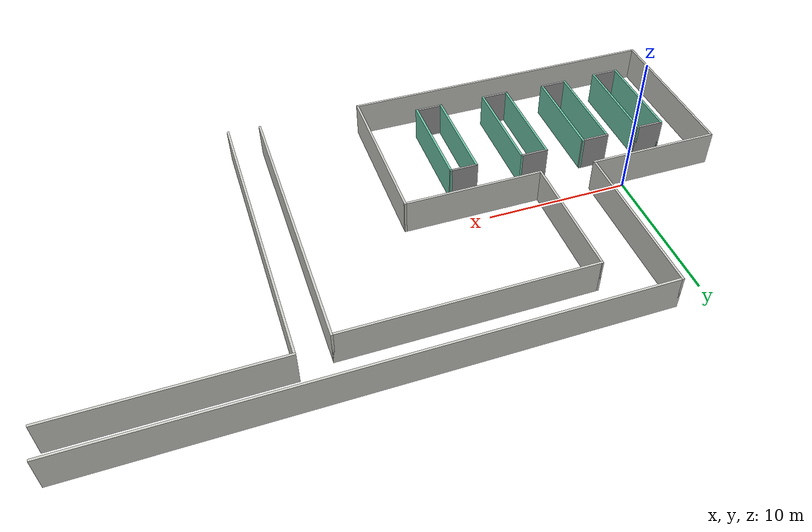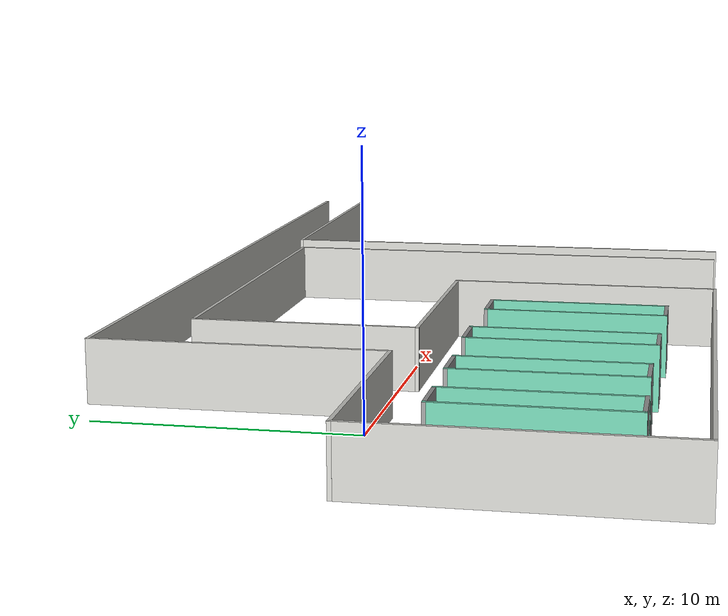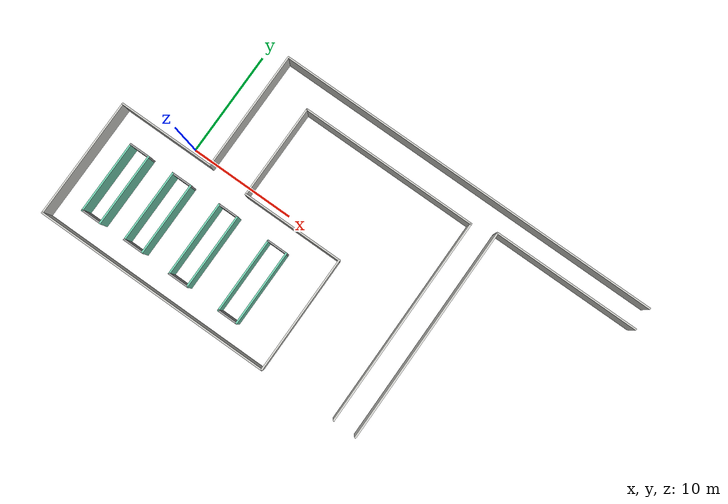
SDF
<?xml version='1.0'?>
<sdf version='1.7'>
  <model name='mybuilding'>
    <pose>16.1608 -0.446538 0 0 -0 0</pose>
    <link name='Wall_0'>
      <collision name='Wall_0_Collision'>
        <geometry>
          <box>
            <size>7 0.15 2.5</size>
          </box>
        </geometry>
        <pose>0 0 1.25 0 -0 0</pose>
      </collision>
      <visual name='Wall_0_Visual'>
        <pose>0 0 1.25 0 -0 0</pose>
        <geometry>
          <box>
            <size>7 0.15 2.5</size>
          </box>
        </geometry>
        <material>
          <script>
            <uri>file://media/materials/scripts/gazebo.material</uri>
            <name>Gazebo/Grey</name>
          </script>
          <ambient>0.435294 0.796078 0.67451 1</ambient>
        </material>
        <meta>
          <layer>0</layer>
        </meta>
      </visual>
      <pose>-20.3708 -5.82846 0 0 -0 -1.5708</pose>
    </link>
    <link name='Wall_1'>
      <collision name='Wall_1_Collision'>
        <geometry>
          <box>
            <size>2 0.15 2.5</size>
          </box>
        </geometry>
        <pose>0 0 1.25 0 -0 0</pose>
      </collision>
      <visual name='Wall_1_Visual'>
        <pose>0 0 1.25 0 -0 0</pose>
        <geometry>
          <box>
            <size>2 0.15 2.5</size>
          </box>
        </geometry>
        <material>
          <script>
            <uri>file://media/materials/scripts/gazebo.material</uri>
            <name>Gazebo/Grey</name>
          </script>
          <ambient>1 1 1 1</ambient>
        </material>
        <meta>
          <layer>0</layer>
        </meta>
      </visual>
      <pose>-19.4458 -9.25346 0 0 -0 0</pose>
    </link>
    <link name='Wall_10'>
      <collision name='Wall_10_Collision'>
        <geometry>
          <box>
            <size>7.25 0.15 2.5</size>
          </box>
        </geometry>
        <pose>0 0 1.25 0 -0 0</pose>
      </collision>
      <visual name='Wall_10_Visual'>
        <pose>0 0 1.25 0 -0 0</pose>
        <geometry>
          <box>
            <size>7.25 0.15 2.5</size>
          </box>
        </geometry>
        <material>
          <script>
            <uri>file://media/materials/scripts/gazebo.material</uri>
            <name>Gazebo/Grey</name>
          </script>
          <ambient>0.435294 0.796078 0.67451 1</ambient>
        </material>
        <meta>
          <layer>0</layer>
        </meta>
      </visual>
      <pose>-11.3008 -5.78346 0 0 -0 -1.5708</pose>
    </link>
    <link name='Wall_11'>
      <collision name='Wall_11_Collision'>
        <geometry>
          <box>
            <size>2 0.15 2.5</size>
          </box>
        </geometry>
        <pose>0 0 1.25 0 -0 0</pose>
      </collision>
      <visual name='Wall_11_Visual'>
        <pose>0 0 1.25 0 -0 0</pose>
        <geometry>
          <box>
            <size>2 0.15 2.5</size>
          </box>
        </geometry>
        <material>
          <script>
            <uri>file://media/materials/scripts/gazebo.material</uri>
            <name>Gazebo/Grey</name>
          </script>
          <ambient>1 1 1 1</ambient>
        </material>
        <meta>
          <layer>0</layer>
        </meta>
      </visual>
      <pose>-10.3758 -9.33346 0 0 -0 0</pose>
    </link>
    <link name='Wall_12'>
      <collision name='Wall_12_Collision'>
        <geometry>
          <box>
            <size>7.25 0.15 2.5</size>
          </box>
        </geometry>
        <pose>0 0 1.25 0 -0 0</pose>
      </collision>
      <visual name='Wall_12_Visual'>
        <pose>0 0 1.25 0 -0 0</pose>
        <geometry>
          <box>
            <size>7.25 0.15 2.5</size>
          </box>
        </geometry>
        <material>
          <script>
            <uri>file://media/materials/scripts/gazebo.material</uri>
            <name>Gazebo/Grey</name>
          </script>
          <ambient>0.435294 0.796078 0.67451 1</ambient>
        </material>
        <meta>
          <layer>0</layer>
        </meta>
      </visual>
      <pose>-9.45077 -5.78346 0 0 -0 1.5708</pose>
    </link>
    <link name='Wall_13'>
      <collision name='Wall_13_Collision'>
        <geometry>
          <box>
            <size>2 0.15 2.5</size>
          </box>
        </geometry>
        <pose>0 0 1.25 0 -0 0</pose>
      </collision>
      <visual name='Wall_13_Visual'>
        <pose>0 0 1.25 0 -0 0</pose>
        <geometry>
          <box>
            <size>2 0.15 2.5</size>
          </box>
        </geometry>
        <material>
          <script>
            <uri>file://media/materials/scripts/gazebo.material</uri>
            <name>Gazebo/Grey</name>
          </script>
          <ambient>1 1 1 1</ambient>
        </material>
        <meta>
          <layer>0</layer>
        </meta>
      </visual>
      <pose>-10.3758 -2.23346 0 0 -0 3.14159</pose>
    </link>
    <link name='Wall_15'>
      <collision name='Wall_15_Collision'>
        <geometry>
          <box>
            <size>7.25 0.15 2.5</size>
          </box>
        </geometry>
        <pose>0 0 1.25 0 -0 0</pose>
      </collision>
      <visual name='Wall_15_Visual'>
        <pose>0 0 1.25 0 -0 0</pose>
        <geometry>
          <box>
            <size>7.25 0.15 2.5</size>
          </box>
        </geometry>
        <material>
          <script>
            <uri>file://media/materials/scripts/gazebo.material</uri>
            <name>Gazebo/Grey</name>
          </script>
          <ambient>0.435294 0.796078 0.67451 1</ambient>
        </material>
        <meta>
          <layer>0</layer>
        </meta>
      </visual>
      <pose>-6.16902 -5.89376 0 0 -0 -1.5708</pose>
    </link>
    <link name='Wall_16'>
      <collision name='Wall_16_Collision'>
        <geometry>
          <box>
            <size>2 0.15 2.5</size>
          </box>
        </geometry>
        <pose>0 0 1.25 0 -0 0</pose>
      </collision>
      <visual name='Wall_16_Visual'>
        <pose>0 0 1.25 0 -0 0</pose>
        <geometry>
          <box>
            <size>2 0.15 2.5</size>
          </box>
        </geometry>
        <material>
          <script>
            <uri>file://media/materials/scripts/gazebo.material</uri>
            <name>Gazebo/Grey</name>
          </script>
          <ambient>1 1 1 1</ambient>
        </material>
        <meta>
          <layer>0</layer>
        </meta>
      </visual>
      <pose>-5.24402 -9.44376 0 0 -0 0</pose>
    </link>
    <link name='Wall_17'>
      <collision name='Wall_17_Collision'>
        <geometry>
          <box>
            <size>7.25 0.15 2.5</size>
          </box>
        </geometry>
        <pose>0 0 1.25 0 -0 0</pose>
      </collision>
      <visual name='Wall_17_Visual'>
        <pose>0 0 1.25 0 -0 0</pose>
        <geometry>
          <box>
            <size>7.25 0.15 2.5</size>
          </box>
        </geometry>
        <material>
          <script>
            <uri>file://media/materials/scripts/gazebo.material</uri>
            <name>Gazebo/Grey</name>
          </script>
          <ambient>0.435294 0.796078 0.67451 1</ambient>
        </material>
        <meta>
          <layer>0</layer>
        </meta>
      </visual>
      <pose>-4.31902 -5.89376 0 0 -0 1.5708</pose>
    </link>
    <link name='Wall_18'>
      <collision name='Wall_18_Collision'>
        <geometry>
          <box>
            <size>2 0.15 2.5</size>
          </box>
        </geometry>
        <pose>0 0 1.25 0 -0 0</pose>
      </collision>
      <visual name='Wall_18_Visual'>
        <pose>0 0 1.25 0 -0 0</pose>
        <geometry>
          <box>
            <size>2 0.15 2.5</size>
          </box>
        </geometry>
        <material>
          <script>
            <uri>file://media/materials/scripts/gazebo.material</uri>
            <name>Gazebo/Grey</name>
          </script>
          <ambient>1 1 1 1</ambient>
        </material>
        <meta>
          <layer>0</layer>
        </meta>
      </visual>
      <pose>-5.24402 -2.34376 0 0 -0 3.14159</pose>
    </link>
    <link name='Wall_2'>
      <collision name='Wall_2_Collision'>
        <geometry>
          <box>
            <size>7 0.15 2.5</size>
          </box>
        </geometry>
        <pose>0 0 1.25 0 -0 0</pose>
      </collision>
      <visual name='Wall_2_Visual'>
        <pose>0 0 1.25 0 -0 0</pose>
        <geometry>
          <box>
            <size>7 0.15 2.5</size>
          </box>
        </geometry>
        <material>
          <script>
            <uri>file://media/materials/scripts/gazebo.material</uri>
            <name>Gazebo/Grey</name>
          </script>
          <ambient>0.435294 0.796078 0.67451 1</ambient>
        </material>
        <meta>
          <layer>0</layer>
        </meta>
      </visual>
      <pose>-18.5208 -5.82846 0 0 -0 1.5708</pose>
    </link>
    <link name='Wall_21'>
      <collision name='Wall_21_Collision'>
        <geometry>
          <box>
            <size>9.25 0.15 2.5</size>
          </box>
        </geometry>
        <pose>0 0 1.25 0 -0 0</pose>
      </collision>
      <visual name='Wall_21_Visual'>
        <pose>0 0 1.25 0 -0 0</pose>
        <geometry>
          <box>
            <size>9.25 0.15 2.5</size>
          </box>
        </geometry>
        <material>
          <script>
            <uri>file://media/materials/scripts/gazebo.material</uri>
            <name>Gazebo/CeilingTiled</name>
          </script>
          <ambient>1 1 1 1</ambient>
        </material>
        <meta>
          <layer>0</layer>
        </meta>
      </visual>
      <pose>-18.4267 -0 0 0 -0 3.14159</pose>
    </link>
    <link name='Wall_23'>
      <collision name='Wall_23_Collision'>
        <geometry>
          <box>
            <size>11.5 0.15 2.5</size>
          </box>
        </geometry>
        <pose>0 0 1.25 0 -0 0</pose>
      </collision>
      <visual name='Wall_23_Visual'>
        <pose>0 0 1.25 0 -0 0</pose>
        <geometry>
          <box>
            <size>11.5 0.15 2.5</size>
          </box>
        </geometry>
        <material>
          <script>
            <uri>file://media/materials/scripts/gazebo.material</uri>
            <name>Gazebo/CeilingTiled</name>
          </script>
          <ambient>1 1 1 1</ambient>
        </material>
        <meta>
          <layer>0</layer>
        </meta>
      </visual>
      <pose>-22.9767 -5.675 0 0 -0 -1.5708</pose>
    </link>
    <link name='Wall_24'>
      <collision name='Wall_24_Collision'>
        <geometry>
          <box>
            <size>22.75 0.15 2.5</size>
          </box>
        </geometry>
        <pose>0 0 1.25 0 -0 0</pose>
      </collision>
      <visual name='Wall_24_Visual'>
        <pose>0 0 1.25 0 -0 0</pose>
        <geometry>
          <box>
            <size>22.75 0.15 2.5</size>
          </box>
        </geometry>
        <material>
          <script>
            <uri>file://media/materials/scripts/gazebo.material</uri>
            <name>Gazebo/CeilingTiled</name>
          </script>
          <ambient>1 1 1 1</ambient>
        </material>
        <meta>
          <layer>0</layer>
        </meta>
      </visual>
      <pose>-11.6767 -11.35 0 0 -0 0</pose>
    </link>
    <link name='Wall_25'>
      <collision name='Wall_25_Collision'>
        <geometry>
          <box>
            <size>11.25 0.15 2.5</size>
          </box>
        </geometry>
        <pose>0 0 1.25 0 -0 0</pose>
      </collision>
      <visual name='Wall_25_Visual'>
        <pose>0 0 1.25 0 -0 0</pose>
        <geometry>
          <box>
            <size>11.25 0.15 2.5</size>
          </box>
        </geometry>
        <material>
          <script>
            <uri>file://media/materials/scripts/gazebo.material</uri>
            <name>Gazebo/CeilingTiled</name>
          </script>
          <ambient>1 1 1 1</ambient>
        </material>
        <meta>
          <layer>0</layer>
        </meta>
      </visual>
      <pose>-0.376686 -5.8 0 0 -0 1.5708</pose>
    </link>
    <link name='Wall_26'>
      <collision name='Wall_26_Collision'>
        <geometry>
          <box>
            <size>9.75 0.15 2.5</size>
          </box>
        </geometry>
        <pose>0 0 1.25 0 -0 0</pose>
      </collision>
      <visual name='Wall_26_Visual'>
        <pose>0 0 1.25 0 -0 0</pose>
        <geometry>
          <box>
            <size>9.75 0.15 2.5</size>
          </box>
        </geometry>
        <material>
          <script>
            <uri>file://media/materials/scripts/gazebo.material</uri>
            <name>Gazebo/CeilingTiled</name>
          </script>
          <ambient>1 1 1 1</ambient>
        </material>
        <meta>
          <layer>0</layer>
        </meta>
      </visual>
      <pose>-5.17669 -0.25 0 0 -0 3.14159</pose>
    </link>
    <link name='Wall_27'>
      <collision name='Wall_27_Collision'>
        <geometry>
          <box>
            <size>9 0.15 2.5</size>
          </box>
        </geometry>
        <pose>0 0 1.25 0 -0 0</pose>
      </collision>
      <visual name='Wall_27_Visual'>
        <pose>0 0 1.25 0 -0 0</pose>
        <geometry>
          <box>
            <size>9 0.15 2.5</size>
          </box>
        </geometry>
        <material>
          <script>
            <uri>file://media/materials/scripts/gazebo.material</uri>
            <name>Gazebo/CeilingTiled</name>
          </script>
          <ambient>1 1 1 1</ambient>
        </material>
        <meta>
          <layer>0</layer>
        </meta>
      </visual>
      <pose>-9.97669 4.175 0 0 -0 1.5708</pose>
    </link>
    <link name='Wall_28'>
      <collision name='Wall_28_Collision'>
        <geometry>
          <box>
            <size>17 0.15 2.5</size>
          </box>
        </geometry>
        <pose>0 0 1.25 0 -0 0</pose>
      </collision>
      <visual name='Wall_28_Visual'>
        <pose>0 0 1.25 0 -0 0</pose>
        <geometry>
          <box>
            <size>17 0.15 2.5</size>
          </box>
        </geometry>
        <material>
          <script>
            <uri>file://media/materials/scripts/gazebo.material</uri>
            <name>Gazebo/CeilingTiled</name>
          </script>
          <ambient>1 1 1 1</ambient>
        </material>
        <meta>
          <layer>0</layer>
        </meta>
      </visual>
      <pose>-1.55169 8.6 0 0 -0 0</pose>
    </link>
    <link name='Wall_29'>
      <collision name='Wall_29_Collision'>
        <geometry>
          <box>
            <size>20 0.15 2.5</size>
          </box>
        </geometry>
        <pose>0 0 1.25 0 -0 0</pose>
      </collision>
      <visual name='Wall_29_Visual'>
        <pose>0 0 1.25 0 -0 0</pose>
        <geometry>
          <box>
            <size>20 0.15 2.5</size>
          </box>
        </geometry>
        <material>
          <script>
            <uri>file://media/materials/scripts/gazebo.material</uri>
            <name>Gazebo/CeilingTiled</name>
          </script>
          <ambient>1 1 1 1</ambient>
        </material>
        <meta>
          <layer>0</layer>
        </meta>
      </visual>
      <pose>6.87331 -1.325 0 0 -0 -1.5708</pose>
    </link>
    <link name='Wall_3'>
      <collision name='Wall_3_Collision'>
        <geometry>
          <box>
            <size>2 0.15 2.5</size>
          </box>
        </geometry>
        <pose>0 0 1.25 0 -0 0</pose>
      </collision>
      <visual name='Wall_3_Visual'>
        <pose>0 0 1.25 0 -0 0</pose>
        <geometry>
          <box>
            <size>2 0.15 2.5</size>
          </box>
        </geometry>
        <material>
          <script>
            <uri>file://media/materials/scripts/gazebo.material</uri>
            <name>Gazebo/Grey</name>
          </script>
          <ambient>1 1 1 1</ambient>
        </material>
        <meta>
          <layer>0</layer>
        </meta>
      </visual>
      <pose>-19.4458 -2.40346 0 0 -0 3.14159</pose>
    </link>
    <link name='Wall_31'>
      <collision name='Wall_31_Collision'>
        <geometry>
          <box>
            <size>11.5 0.15 2.5</size>
          </box>
        </geometry>
        <pose>0 0 1.25 0 -0 0</pose>
      </collision>
      <visual name='Wall_31_Visual'>
        <pose>0 0 1.25 0 -0 0</pose>
        <geometry>
          <box>
            <size>11.5 0.15 2.5</size>
          </box>
        </geometry>
        <material>
          <script>
            <uri>file://media/materials/scripts/gazebo.material</uri>
            <name>Gazebo/CeilingTiled</name>
          </script>
          <ambient>1 1 1 1</ambient>
        </material>
        <meta>
          <layer>0</layer>
        </meta>
      </visual>
      <pose>-13.8767 5.675 0 0 -0 1.5708</pose>
    </link>
    <link name='Wall_32'>
      <collision name='Wall_32_Collision'>
        <geometry>
          <box>
            <size>37 0.15 2.5</size>
          </box>
        </geometry>
        <pose>0 0 1.25 0 -0 0</pose>
      </collision>
      <visual name='Wall_32_Visual'>
        <pose>0 0 1.25 0 -0 0</pose>
        <geometry>
          <box>
            <size>37 0.15 2.5</size>
          </box>
        </geometry>
        <material>
          <script>
            <uri>file://media/materials/scripts/gazebo.material</uri>
            <name>Gazebo/CeilingTiled</name>
          </script>
          <ambient>1 1 1 1</ambient>
        </material>
        <meta>
          <layer>0</layer>
        </meta>
      </visual>
      <pose>4.54831 11.35 0 0 -0 0</pose>
    </link>
    <link name='Wall_34'>
      <collision name='Wall_34_Collision'>
        <geometry>
          <box>
            <size>14 0.15 2.5</size>
          </box>
        </geometry>
        <pose>0 0 1.25 0 -0 0</pose>
      </collision>
      <visual name='Wall_34_Visual'>
        <pose>0 0 1.25 0 -0 0</pose>
        <geometry>
          <box>
            <size>14 0.15 2.5</size>
          </box>
        </geometry>
        <material>
          <script>
            <uri>file://media/materials/scripts/gazebo.material</uri>
            <name>Gazebo/CeilingTiled</name>
          </script>
          <ambient>1 1 1 1</ambient>
        </material>
        <meta>
          <layer>0</layer>
        </meta>
      </visual>
      <pose>16.0517 9.25434 0 0 -0 3.14159</pose>
    </link>
    <link name='Wall_35'>
      <collision name='Wall_35_Collision'>
        <geometry>
          <box>
            <size>20.75 0.15 2.5</size>
          </box>
        </geometry>
        <pose>0 0 1.25 0 -0 0</pose>
      </collision>
      <visual name='Wall_35_Visual'>
        <pose>0 0 1.25 0 -0 0</pose>
        <geometry>
          <box>
            <size>20.75 0.15 2.5</size>
          </box>
        </geometry>
        <material>
          <script>
            <uri>file://media/materials/scripts/gazebo.material</uri>
            <name>Gazebo/CeilingTiled</name>
          </script>
          <ambient>1 1 1 1</ambient>
        </material>
        <meta>
          <layer>0</layer>
        </meta>
      </visual>
      <pose>9.12669 -1.04566 0 0 -0 -1.5708</pose>
    </link>
    <link name='Wall_5'>
      <collision name='Wall_5_Collision'>
        <geometry>
          <box>
            <size>7 0.15 2.5</size>
          </box>
        </geometry>
        <pose>0 0 1.25 0 -0 0</pose>
      </collision>
      <visual name='Wall_5_Visual'>
        <pose>0 0 1.25 0 -0 0</pose>
        <geometry>
          <box>
            <size>7 0.15 2.5</size>
          </box>
        </geometry>
        <material>
          <script>
            <uri>file://media/materials/scripts/gazebo.material</uri>
            <name>Gazebo/Grey</name>
          </script>
          <ambient>0.435294 0.796078 0.67451 1</ambient>
        </material>
        <meta>
          <layer>0</layer>
        </meta>
      </visual>
      <pose>-16.0308 -5.77846 0 0 -0 -1.5708</pose>
    </link>
    <link name='Wall_6'>
      <collision name='Wall_6_Collision'>
        <geometry>
          <box>
            <size>2 0.15 2.5</size>
          </box>
        </geometry>
        <pose>0 0 1.25 0 -0 0</pose>
      </collision>
      <visual name='Wall_6_Visual'>
        <pose>0 0 1.25 0 -0 0</pose>
        <geometry>
          <box>
            <size>2 0.15 2.5</size>
          </box>
        </geometry>
        <material>
          <script>
            <uri>file://media/materials/scripts/gazebo.material</uri>
            <name>Gazebo/Grey</name>
          </script>
          <ambient>1 1 1 1</ambient>
        </material>
        <meta>
          <layer>0</layer>
        </meta>
      </visual>
      <pose>-15.1058 -9.20346 0 0 -0 0</pose>
    </link>
    <link name='Wall_7'>
      <collision name='Wall_7_Collision'>
        <geometry>
          <box>
            <size>7 0.15 2.5</size>
          </box>
        </geometry>
        <pose>0 0 1.25 0 -0 0</pose>
      </collision>
      <visual name='Wall_7_Visual'>
        <pose>0 0 1.25 0 -0 0</pose>
        <geometry>
          <box>
            <size>7 0.15 2.5</size>
          </box>
        </geometry>
        <material>
          <script>
            <uri>file://media/materials/scripts/gazebo.material</uri>
            <name>Gazebo/Grey</name>
          </script>
          <ambient>0.435294 0.796078 0.67451 1</ambient>
        </material>
        <meta>
          <layer>0</layer>
        </meta>
      </visual>
      <pose>-14.1808 -5.77846 0 0 -0 1.5708</pose>
    </link>
    <link name='Wall_8'>
      <collision name='Wall_8_Collision'>
        <geometry>
          <box>
            <size>2 0.15 2.5</size>
          </box>
        </geometry>
        <pose>0 0 1.25 0 -0 0</pose>
      </collision>
      <visual name='Wall_8_Visual'>
        <pose>0 0 1.25 0 -0 0</pose>
        <geometry>
          <box>
            <size>2 0.15 2.5</size>
          </box>
        </geometry>
        <material>
          <script>
            <uri>file://media/materials/scripts/gazebo.material</uri>
            <name>Gazebo/Grey</name>
          </script>
          <ambient>1 1 1 1</ambient>
        </material>
        <meta>
          <layer>0</layer>
        </meta>
      </visual>
      <pose>-15.1058 -2.35346 0 0 -0 3.14159</pose>
    </link>
    <static>1</static>
  </model>
</sdf>
